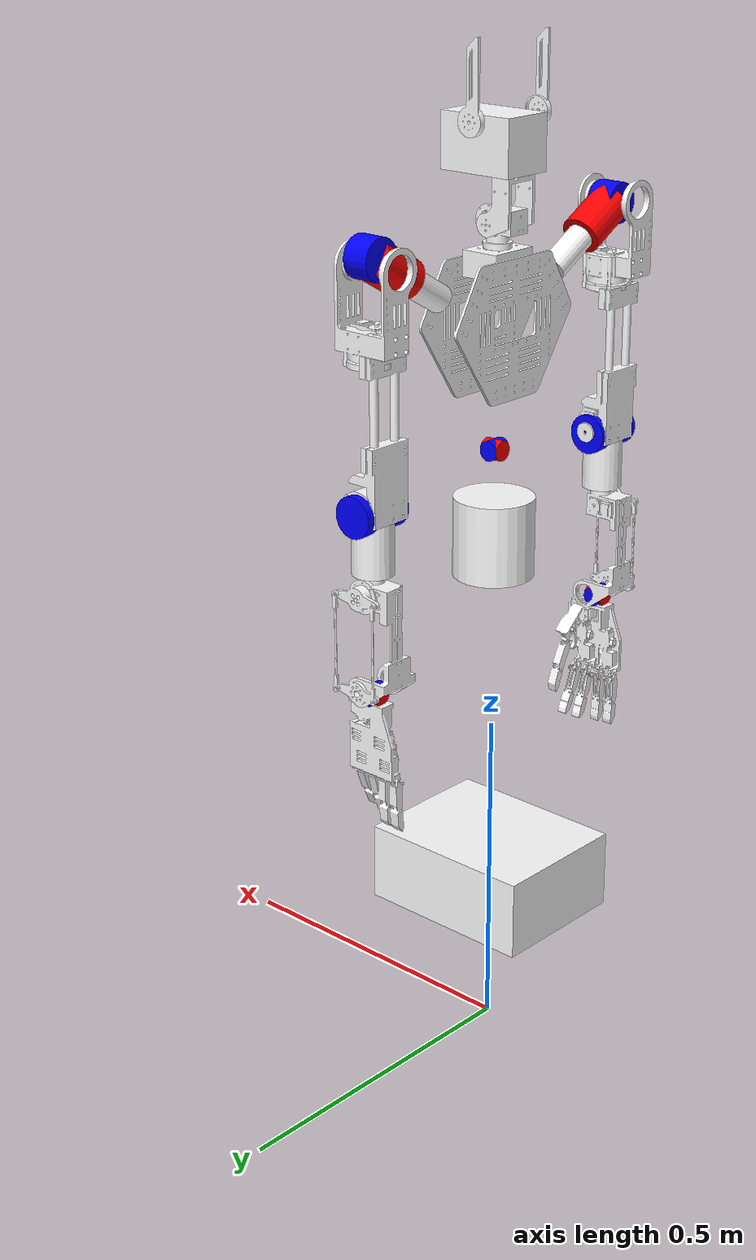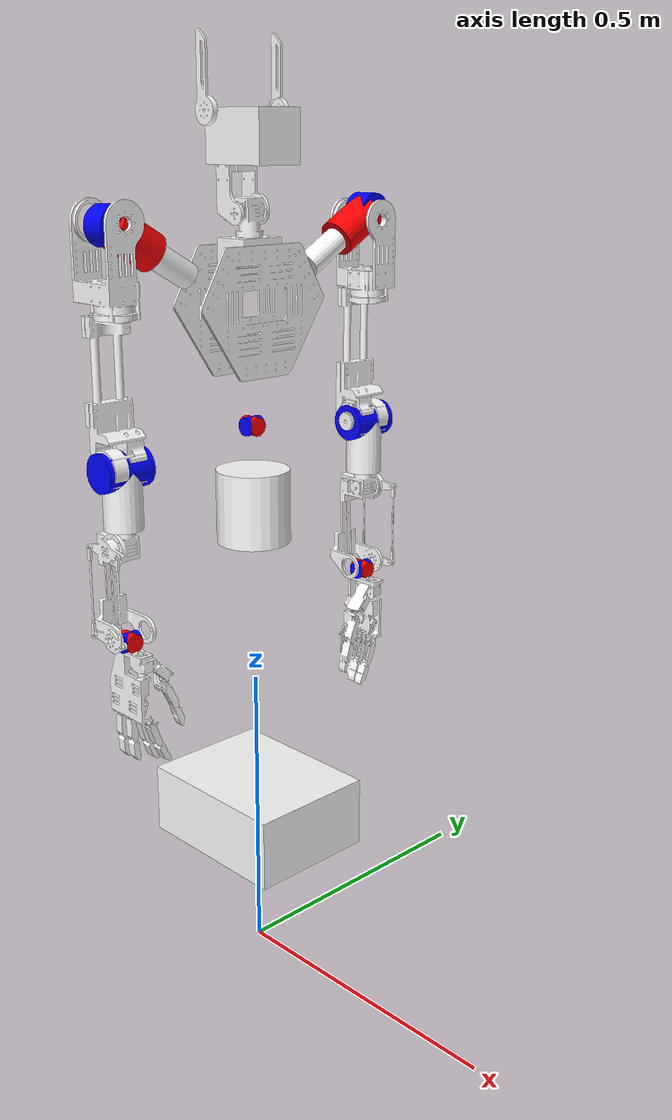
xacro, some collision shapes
<?xml version="1.0"?>

<robot name="rx1" xmlns:xacro="http://ros.org/wiki/xacro">
  <xacro:arg name="controllers_file" default="" />
  <xacro:arg name="rgbd_topic_root" default="/rx1/rgbd_camera" />

  <xacro:property name="controllers_file" value="$(arg controllers_file)" />
  <xacro:property name="rgbd_topic_root" value="$(arg rgbd_topic_root)" />

  <xacro:include filename="$(find rx1_description)/urdf/rx1_optimized.urdf.xacro" />

  <link name="world" />
  <joint name="world_base_joint" type="fixed">
    <origin xyz="0 0 0.2" rpy="0 0 0" />
    <parent link="world" />
    <child link="base_link" />
  </joint>

  <ros2_control name="GazeboSimSystem" type="system">
    <hardware>
      <plugin>gz_ros2_control/GazeboSimSystem</plugin>
    </hardware>

    <joint name="base2torso_yaw_joint">
      <command_interface name="position" />
      <state_interface name="position"><param name="initial_value">0.0</param></state_interface>
      <state_interface name="velocity"><param name="initial_value">0.0</param></state_interface>
    </joint>
    <joint name="torso_yaw2pitch_joint">
      <command_interface name="position" />
      <state_interface name="position"><param name="initial_value">0.0</param></state_interface>
      <state_interface name="velocity"><param name="initial_value">0.0</param></state_interface>
    </joint>
    <joint name="torso_pitch2roll_joint">
      <command_interface name="position" />
      <state_interface name="position"><param name="initial_value">0.0</param></state_interface>
      <state_interface name="velocity"><param name="initial_value">0.0</param></state_interface>
    </joint>

    <joint name="head_base2neck_yaw_joint">
      <command_interface name="position" />
      <state_interface name="position"><param name="initial_value">0.0</param></state_interface>
      <state_interface name="velocity"><param name="initial_value">0.0</param></state_interface>
    </joint>
    <joint name="neck_yaw2pitch_joint">
      <command_interface name="position" />
      <state_interface name="position"><param name="initial_value">0.0</param></state_interface>
      <state_interface name="velocity"><param name="initial_value">0.0</param></state_interface>
    </joint>
    <joint name="neck_pitch2head_depth_cam_mount_joint">
      <command_interface name="position" />
      <state_interface name="position"><param name="initial_value">0.0</param></state_interface>
      <state_interface name="velocity"><param name="initial_value">0.0</param></state_interface>
    </joint>
    <joint name="head_depth_cam_mount2right_ear_joint">
      <command_interface name="position" />
      <state_interface name="position"><param name="initial_value">0.0</param></state_interface>
      <state_interface name="velocity"><param name="initial_value">0.0</param></state_interface>
    </joint>
    <joint name="head_depth_cam_mount2left_ear_joint">
      <command_interface name="position" />
      <state_interface name="position"><param name="initial_value">0.0</param></state_interface>
      <state_interface name="velocity"><param name="initial_value">0.0</param></state_interface>
    </joint>

    <joint name="right_shoul_base2shoul_joint">
      <command_interface name="position" />
      <state_interface name="position"><param name="initial_value">0.0</param></state_interface>
      <state_interface name="velocity"><param name="initial_value">0.0</param></state_interface>
    </joint>
    <joint name="right_shoul2shoul_rot_joint">
      <command_interface name="position" />
      <state_interface name="position"><param name="initial_value">0.0</param></state_interface>
      <state_interface name="velocity"><param name="initial_value">0.0</param></state_interface>
    </joint>
    <joint name="right_arm2armrot_joint">
      <command_interface name="position" />
      <state_interface name="position"><param name="initial_value">0.0</param></state_interface>
      <state_interface name="velocity"><param name="initial_value">0.0</param></state_interface>
    </joint>
    <joint name="right_armrot2elbow_joint">
      <command_interface name="position" />
      <state_interface name="position"><param name="initial_value">0.0</param></state_interface>
      <state_interface name="velocity"><param name="initial_value">0.0</param></state_interface>
    </joint>
    <joint name="right_forearm2forearmrot_joint">
      <command_interface name="position" />
      <state_interface name="position"><param name="initial_value">0.0</param></state_interface>
      <state_interface name="velocity"><param name="initial_value">0.0</param></state_interface>
    </joint>
    <joint name="right_forearmrot2forearm_pitch_joint">
      <command_interface name="position" />
      <state_interface name="position"><param name="initial_value">0.0</param></state_interface>
      <state_interface name="velocity"><param name="initial_value">0.0</param></state_interface>
    </joint>
    <joint name="right_forearm_pitch2forearm_roll_joint">
      <command_interface name="position" />
      <state_interface name="position"><param name="initial_value">0.0</param></state_interface>
      <state_interface name="velocity"><param name="initial_value">0.0</param></state_interface>
    </joint>

    <joint name="left_shoul_base2shoul_joint">
      <command_interface name="position" />
      <state_interface name="position"><param name="initial_value">0.0</param></state_interface>
      <state_interface name="velocity"><param name="initial_value">0.0</param></state_interface>
    </joint>
    <joint name="left_shoul2shoul_rot_joint">
      <command_interface name="position" />
      <state_interface name="position"><param name="initial_value">0.0</param></state_interface>
      <state_interface name="velocity"><param name="initial_value">0.0</param></state_interface>
    </joint>
    <joint name="left_arm2armrot_joint">
      <command_interface name="position" />
      <state_interface name="position"><param name="initial_value">0.0</param></state_interface>
      <state_interface name="velocity"><param name="initial_value">0.0</param></state_interface>
    </joint>
    <joint name="left_armrot2elbow_joint">
      <command_interface name="position" />
      <state_interface name="position"><param name="initial_value">0.0</param></state_interface>
      <state_interface name="velocity"><param name="initial_value">0.0</param></state_interface>
    </joint>
    <joint name="left_forearm2forearmrot_joint">
      <command_interface name="position" />
      <state_interface name="position"><param name="initial_value">0.0</param></state_interface>
      <state_interface name="velocity"><param name="initial_value">0.0</param></state_interface>
    </joint>
    <joint name="left_forearmrot2forearm_pitch_joint">
      <command_interface name="position" />
      <state_interface name="position"><param name="initial_value">0.0</param></state_interface>
      <state_interface name="velocity"><param name="initial_value">0.0</param></state_interface>
    </joint>
    <joint name="left_forearm_pitch2forearm_roll_joint">
      <command_interface name="position" />
      <state_interface name="position"><param name="initial_value">0.0</param></state_interface>
      <state_interface name="velocity"><param name="initial_value">0.0</param></state_interface>
    </joint>
  </ros2_control>

  <gazebo>
    <plugin filename="libgz_ros2_control-system.so" name="gz_ros2_control::GazeboSimROS2ControlPlugin">
      <parameters>${controllers_file}</parameters>
      <hold_joints>true</hold_joints>
      <position_proportional_gain>0.5</position_proportional_gain>
    </plugin>
  </gazebo>

  <gazebo reference="camera_link">
    <sensor name="head_rgbd_camera" type="rgbd_camera">
      <always_on>true</always_on>
      <update_rate>15</update_rate>
      <visualize>true</visualize>
      <topic>${rgbd_topic_root}</topic>
      <camera>
        <horizontal_fov>1.0471975512</horizontal_fov>
        <image>
          <width>640</width>
          <height>480</height>
          <format>R8G8B8</format>
        </image>
        <clip>
          <near>0.1</near>
          <far>5.0</far>
        </clip>
      </camera>
    </sensor>
  </gazebo>
</robot>

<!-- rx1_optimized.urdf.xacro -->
<!--Note that the inertia values are placeholder and need to be updated for proper physics simulation-->

<robot name="rx1" xmlns:xacro="http://ros.org/wiki/xacro">
    <xacro:property name="rx1_pi" value="3.1415" />
    <xacro:property name="motor_torque" value="50.0"/>
    <xacro:property name="motor_vec" value="15"/>

    <material name="red">
        <color rgba="1 0 0 1"/>
    </material>

    <material name="white">
        <color rgba="1 1 1 1"/>
    </material>

    <material name="blue">
        <color rgba="0 0 1 1"/>
    </material>

    <xacro:macro name="default_inertial" params="mass">
        <inertial>
            <mass value="${mass}" />
            <inertia ixx="1.0" ixy="0.0" ixz="0.0" iyy="1.0" iyz="0.0" izz="1.0" />
        </inertial>
    </xacro:macro>

    <link name="base_link">
        <inertial>
            <mass value="5.0" />
            <!-- Keep the root inertia physically valid for Gazebo Harmonic. -->
            <inertia ixx="0.18" ixy="0.0" ixz="0.0" iyy="0.16" iyz="0.0" izz="0.2" />
        </inertial>

        <visual>
            <geometry>
                <mesh filename="package://rx1_description/meshes/base_link.stl"/>
            </geometry>
            <material name="white"/>
        </visual>
        <collision>
            <geometry>
                <box size="0.28 0.22 0.12" />
            </geometry>
            <origin rpy="0 0 0" xyz="0 0 0.06"/>
        </collision>
        <collision>
            <geometry>
                <cylinder length="0.46" radius="0.045" />
            </geometry>
            <origin rpy="0 0 0" xyz="0 0 0.35"/>
        </collision>
    </link>

    <!--                            TORSO START                         -->
    <link name="torso_yaw_link">
        <inertial>
            <mass value="5.0" />
            <inertia ixx="1.0" ixy="0.0" ixz="0.0" iyy="1.0" iyz="0.0" izz="1.0" />
        </inertial>
        <visual>
            <geometry>
                <mesh filename="package://rx1_description/meshes/torso_yaw_link.stl"/>
            </geometry>
            <origin rpy="0 0 0" xyz="0 0 0"/>
            <material name="white"/>
        </visual>
        <collision>
            <geometry>
                <cylinder length="0.12" radius="0.06" />
            </geometry>
            <origin rpy="0 0 0" xyz="0 0 0.02"/>
        </collision>
    </link>
    <joint name="base2torso_yaw_joint" type="revolute">
        <axis xyz="0 0 1" />
        <limit effort="${motor_torque}" lower="${-0.5*rx1_pi}" upper="${0.5*rx1_pi}" velocity="${motor_vec}"/>
        <dynamics damping="0.5" friction="5.0" />
        <origin xyz="0 0 0.5825" rpy="0 0 0" />
        <parent link="base_link" />
        <child link="torso_yaw_link" />
    </joint>

    <link name="torso_pitch_link">
        <inertial>
            <mass value="0.5" />
            <inertia ixx="1.0" ixy="0.0" ixz="0.0" iyy="1.0" iyz="0.0" izz="1.0" />
        </inertial>
        <visual>
            <geometry>
                <cylinder length="0.03" radius="0.015" />
            </geometry>
            <origin rpy="${0.5*rx1_pi} 0 0" xyz="0 0 0"/>
            <material name="blue"/>
        </visual>
        <collision>
            <geometry>
                <cylinder length="0.03" radius="0.01" />
            </geometry>
            <origin rpy="${0.5*rx1_pi} 0 0" xyz="0 0 0"/>
        </collision>
    </link>
    <joint name="torso_yaw2pitch_joint" type="revolute">
        <axis xyz="0 1 0" />
        <limit effort="${motor_torque}" lower="${-0.25*rx1_pi}" upper="${0.25*rx1_pi}" velocity="${motor_vec}"/>
        <dynamics damping="0.5" friction="0.1" />
        <origin xyz="0 0 0.15" rpy="0 0 0" />
        <parent link="torso_yaw_link" />
        <child link="torso_pitch_link" />
    </joint>

    <link name="torso_roll_link">
        <inertial>
            <mass value="0.5" />
            <inertia ixx="1.0" ixy="0.0" ixz="0.0" iyy="1.0" iyz="0.0" izz="1.0" />
        </inertial>
        <visual>
            <geometry>
                <cylinder length="0.03" radius="0.015" />
            </geometry>
            <origin rpy="0 ${0.5*rx1_pi} 0" xyz="0 0 0"/>
            <material name="red"/>
        </visual>
        <collision>
            <geometry>
                <cylinder length="0.03" radius="0.01" />
            </geometry>
            <origin rpy="0 ${0.5*rx1_pi} 0" xyz="0 0 0"/>
        </collision>
    </link>
    <joint name="torso_pitch2roll_joint" type="revolute">
        <axis xyz="1 0 0" />
        <limit effort="${motor_torque}" lower="${-0.25*rx1_pi}" upper="${0.25*rx1_pi}" velocity="${motor_vec}"/>
        <dynamics damping="0.5" friction="0.1" />
        <origin xyz="0 0 0" rpy="0 0 0" />
        <parent link="torso_pitch_link" />
        <child link="torso_roll_link" />
    </joint>

    <link name="torso_link">
        <inertial>
            <mass value="1" />
            <inertia ixx="4.16666667e-06" ixy="0.0" ixz="0.0" iyy="6.6666666667e-6" iyz="0.0" izz="04.16666667e-06" />
        </inertial>
        <visual>
            <geometry>
                <!--box size="0.03 0.12 0.02" /-->
                <mesh filename="package://rx1_description/meshes/torso_link.stl"/>
            </geometry>
            <origin rpy="0 0 0" xyz="0 0 0"/>
            <material name="white"/>
        </visual>
        <collision>
            <geometry>
                <box size="0.16 0.12 0.16" />
            </geometry>
            <origin rpy="0 0 0" xyz="0 0 0.02"/>
        </collision>
    </link>
    <joint name="torso_roll2torso_joint" type="fixed">
        <origin xyz="0 0 0.08" rpy="0 0 0" />
        <parent link="torso_roll_link" />
        <child link="torso_link" />
    </joint>
    <!--                            TORSO END                         -->

    <!--                            HEAD START                        -->
    <link name="head_base_link">
        <inertial>
            <mass value="0.05" />
            <inertia ixx="4.16666667e-06" ixy="0.0" ixz="0.0" iyy="6.6666666667e-6" iyz="0.0" izz="04.16666667e-06" />
        </inertial>
        <visual>
            <geometry>
                <mesh filename="package://rx1_description/meshes/head/head_base_link.stl"/>
            </geometry>
            <origin rpy="0 0 0" xyz="0 0 0"/>
            <material name="white"/>
        </visual>
        <collision>
            <geometry>
                <box size="0.12 0.10 0.08" />
            </geometry>
            <origin rpy="0 0 0" xyz="0 0 0"/>
        </collision>
    </link>
    <joint name="torso2head_base_joint" type="fixed">
        <origin xyz="0 0 0.21" rpy="0 0 0" />
        <parent link="torso_link" />
        <child link="head_base_link" />
    </joint>

    <link name="neck_yaw_link">
        <inertial>
            <mass value="0.05" />
            <inertia ixx="4.16666667e-06" ixy="0.0" ixz="0.0" iyy="6.6666666667e-6" iyz="0.0" izz="04.16666667e-06" />
        </inertial>
        <visual>
            <geometry>
                <mesh filename="package://rx1_description/meshes/head/neck_yaw_link.stl"/>
            </geometry>
            <origin rpy="0 0 0" xyz="0 0 0"/>
            <material name="white"/>
        </visual>
        <collision>
            <geometry>
                <cylinder length="0.05" radius="0.04" />
            </geometry>
            <origin rpy="0 0 0" xyz="0 0 0.01"/>
        </collision>
    </link>
    <joint name="head_base2neck_yaw_joint" type="revolute">
        <axis xyz="0 0 1" />
        <limit effort="${motor_torque}" lower="${-0.5*rx1_pi}" upper="${0.5*rx1_pi}" velocity="${motor_vec}"/>
        <dynamics damping="0.5" friction="0.1" />
        <origin xyz="0 0 0" rpy="0 0 0" />
        <parent link="head_base_link" />
        <child link="neck_yaw_link" />
    </joint>

    <link name="neck_pitch_link">
        <inertial>
            <mass value="0.05" />
            <inertia ixx="4.16666667e-06" ixy="0.0" ixz="0.0" iyy="6.6666666667e-6" iyz="0.0" izz="04.16666667e-06" />
        </inertial>
        <visual>
            <geometry>
                <mesh filename="package://rx1_description/meshes/head/neck_pitch_link.stl"/>
            </geometry>
            <origin rpy="0 0 0" xyz="0 0 0"/>
            <material name="white"/>
        </visual>
        <collision>
            <geometry>
                <box size="0.09 0.06 0.06" />
            </geometry>
            <origin rpy="0 0 0" xyz="0 0 0.01"/>
        </collision>
    </link>
    <joint name="neck_yaw2pitch_joint" type="revolute">
        <axis xyz="0 1 0" />
        <limit effort="${motor_torque}" lower="${-0.5*rx1_pi}" upper="${0.5*rx1_pi}" velocity="${motor_vec}"/>
        <dynamics damping="0.5" friction="0.1" />
        <origin xyz="0 0 0.035" rpy="0 0 0" />
        <parent link="neck_yaw_link" />
        <child link="neck_pitch_link" />
    </joint>

    <link name="head_depth_cam_mount_link">
        <inertial>
            <mass value="0.05" />
            <inertia ixx="4.16666667e-06" ixy="0.0" ixz="0.0" iyy="6.6666666667e-6" iyz="0.0" izz="04.16666667e-06" />
        </inertial>
        <visual>
            <geometry>
                <mesh filename="package://rx1_description/meshes/head/head_depth_cam_mount_link.stl"/>
            </geometry>
            <origin rpy="0 0 0" xyz="0 0 0"/>
            <material name="white"/>
        </visual>
        <collision>
            <geometry>
                <box size="0.12 0.08 0.08" />
            </geometry>
            <origin rpy="0 0 0" xyz="0.02 0 0.01"/>
        </collision>
    </link>
    <joint name="neck_pitch2head_depth_cam_mount_joint" type="revolute">
        <axis xyz="1 0 0" />
        <limit effort="${motor_torque}" lower="${-0.5*rx1_pi}" upper="${0.5*rx1_pi}" velocity="${motor_vec}"/>
        <dynamics damping="0.1" friction="0.0" />
        <origin xyz="-0.01 0 0.1" rpy="0 0 0" />
        <parent link="neck_pitch_link" />
        <child link="head_depth_cam_mount_link" />
    </joint>

    <link name="camera_link">
        <inertial>
            <mass value="0.05" />
            <inertia ixx="4.16666667e-06" ixy="0.0" ixz="0.0" iyy="6.6666666667e-6" iyz="0.0" izz="04.16666667e-06" />
        </inertial>
        <visual>
            <geometry>
                <box size="0.01 0.01 0.01" />
            </geometry>
            <origin rpy="0 0 0" xyz="0 0 0"/>
            <material name="white"/>
        </visual>
        <collision>
            <geometry>
                <box size="0.01 0.01 0.01" />
            </geometry>
            <origin rpy="0 0 0" xyz="0 0 0"/>
        </collision>
    </link>
    <joint name="head_depth_cam_mount2camera_joint" type="fixed">
        <origin xyz="0.05 0 0.03" rpy="0 0 0" />
        <parent link="head_depth_cam_mount_link" />
        <child link="camera_link" />
    </joint>

    <link name="right_ear_link">
        <inertial>
            <mass value="0.05" />
            <inertia ixx="4.16666667e-06" ixy="0.0" ixz="0.0" iyy="6.6666666667e-6" iyz="0.0" izz="04.16666667e-06" />
        </inertial>
        <visual>
            <geometry>
                <mesh filename="package://rx1_description/meshes/head/right_ear_link.stl"/>
            </geometry>
            <origin rpy="0 0 0" xyz="0 0 0"/>
            <material name="white"/>
        </visual>
        <collision>
            <geometry>
                <box size="0.02 0.04 0.05" />
            </geometry>
            <origin rpy="0 0 0" xyz="0 -0.005 0"/>
        </collision>
    </link>
    <joint name="head_depth_cam_mount2right_ear_joint" type="revolute">
        <axis xyz="0 1 0" />
        <limit effort="${motor_torque}" lower="${-0.5*rx1_pi}" upper="${0.5*rx1_pi}" velocity="${motor_vec}"/>
        <dynamics damping="0.1" friction="0.0" />
        <origin xyz="0 -0.065 0.045" rpy="0 0 0" />
        <parent link="head_depth_cam_mount_link" />
        <child link="right_ear_link" />
    </joint>

    <link name="left_ear_link">
        <inertial>
            <mass value="0.05" />
            <inertia ixx="4.16666667e-06" ixy="0.0" ixz="0.0" iyy="6.6666666667e-6" iyz="0.0" izz="04.16666667e-06" />
        </inertial>
        <visual>
            <geometry>
                <mesh filename="package://rx1_description/meshes/head/left_ear_link.stl"/>
            </geometry>
            <origin rpy="0 0 0" xyz="0 0 0"/>
            <material name="white"/>
        </visual>
        <collision>
            <geometry>
                <box size="0.02 0.04 0.05" />
            </geometry>
            <origin rpy="0 0 0" xyz="0 0.005 0"/>
        </collision>
    </link>
    <joint name="head_depth_cam_mount2left_ear_joint" type="revolute">
        <axis xyz="0 1 0" />
        <limit effort="${motor_torque}" lower="${-0.5*rx1_pi}" upper="${0.5*rx1_pi}" velocity="${motor_vec}"/>
        <dynamics damping="0.1" friction="0.0" />
        <origin xyz="0 0.065 0.045" rpy="0 0 0" />
        <parent link="head_depth_cam_mount_link" />
        <child link="left_ear_link" />
    </joint>

    <!--                            HEAD END                           -->

    <!--                            ARM START                          -->
    <xacro:macro name="arm" params="prefix side">
        <link name="${prefix}_shoul_base_link">
            <inertial>
                <mass value="0.2" />
                <inertia ixx="4.16666667e-06" ixy="0.0" ixz="0.0" iyy="6.6666666667e-6" iyz="0.0" izz="04.16666667e-06" />
            </inertial>

            <visual>
                <geometry>
                    <cylinder length="0.075" radius="0.02" />
                </geometry>
                <origin rpy="0 0 0" xyz="0 0 0.0375"/>
                <material name="white"/>
            </visual>
            <collision>
                <geometry>
                    <cylinder length="0.075" radius="0.02" />
                </geometry>
                <origin rpy="0 0 0" xyz="0 0 0.0375"/>
            </collision>
        </link>
        <joint name="head_base2${prefix}_shoul_base_joint" type="fixed">
            <origin xyz="0 ${-0.12*side} -0.05" rpy="${0.3333*rx1_pi*side} 0 0" />
            <parent link="head_base_link" />
            <child link="${prefix}_shoul_base_link" />
        </joint>

        <link name="${prefix}_shoul_link">
            <inertial>
                <mass value="0.2" />
                <inertia ixx="1.0" ixy="0.0" ixz="0.0" iyy="1.0" iyz="0.0" izz="1.0" />
            </inertial>
            <visual>
                <geometry>
                    <cylinder length="0.08" radius="0.03" />
                </geometry>
                <origin rpy="0 0 0" xyz="0 0 0.04"/>
                <material name="red"/>
            </visual>
            <collision>
                <geometry>
                    <cylinder length="0.08" radius="0.03" />
                </geometry>
                <origin rpy="0 0 0" xyz="0 0 0.04"/>
            </collision>
        </link>
        <joint name="${prefix}_shoul_base2shoul_joint" type="revolute">
            <axis xyz="0 0 1" />
                <limit effort="${motor_torque}" lower="${-0.8*rx1_pi}" upper="${0.8*rx1_pi}" velocity="${motor_vec}"/>
            <dynamics damping="0.5" friction="0.1" />
            <origin xyz="0 0 0.075" rpy="0 0 0" />
            <parent link="${prefix}_shoul_base_link" />
            <child link="${prefix}_shoul_link" />
        </joint>

        <link name="${prefix}_shoul_rot_link">
            <inertial>
                <mass value="0.2" />
                <inertia ixx="1.0" ixy="0.0" ixz="0.0" iyy="1.0" iyz="0.0" izz="1.0" />
            </inertial>
            <visual>
                <geometry>
                    <cylinder length="0.04" radius="0.03" />
                </geometry>
                <origin rpy="0 ${0.5*rx1_pi} 0" xyz="0 0 0"/>
                <material name="blue"/>
            </visual>
            <collision>
                <geometry>
                    <cylinder length="0.04" radius="0.03" />
                </geometry>
                <origin rpy="0 ${0.5*rx1_pi} 0" xyz="0 0 0"/>
            </collision>
        </link>
        <joint name="${prefix}_shoul2shoul_rot_joint" type="revolute">
            <axis xyz="1 0 0" />
            <xacro:if value="${prefix == 'right'}">
                <limit effort="${motor_torque}" lower="${-0.5*rx1_pi}" upper="${0.16*rx1_pi}" velocity="${motor_vec}"/>
                <dynamics damping="0.5" friction="0.1" />
            </xacro:if>
            <xacro:if value="${prefix == 'left'}">
                <limit effort="${motor_torque}" lower="${-0.16*rx1_pi}" upper="${0.5*rx1_pi}" velocity="${motor_vec}"/>
                <dynamics damping="0.5" friction="0.1" />
            </xacro:if>
            <origin xyz="0 0 0.08" rpy="${-0.3333*rx1_pi*side} 0 0" />
            <parent link="${prefix}_shoul_link" />
            <child link="${prefix}_shoul_rot_link" />
        </joint>

        <link name="${prefix}_upper_arm_link">
           <inertial>
                <mass value="0.1" />
                <inertia ixx="1.0" ixy="0.0" ixz="0.0" iyy="1.0" iyz="0.0" izz="1.0" />
           </inertial>
           <visual>
                <geometry>
                    <!--cylinder length="0.085" radius="0.015" /-->
                    <mesh filename="package://rx1_description/meshes/${prefix}_arm/${prefix}_upper_arm_link.stl"/>
                </geometry>
                <origin rpy="0 0 0" xyz="0 0 0"/>
                <material name="white"/>
            </visual>
            <collision>
                <geometry>
                    <box size="0.08 0.08 0.14" />
                </geometry>
                <origin rpy="0 0 0" xyz="0 0 -0.03"/>
            </collision>
        </link>
        <joint name="${prefix}_shoul_rot2upper_arm_joint" type="fixed">
            <origin xyz="0 0 -0.0625" rpy="0 0 0" />
            <parent link="${prefix}_shoul_rot_link" />
            <child link="${prefix}_upper_arm_link" />
        </joint>

        <link name="${prefix}_armrot_link">
            <inertial>
                <mass value="0.1" />
                <inertia ixx="1.0" ixy="0.0" ixz="0.0" iyy="1.0" iyz="0.0" izz="1.0" />
            </inertial>
            <visual>
                <geometry>
                    <!--cylinder length="0.22" radius="0.03" /-->
                    <mesh filename="package://rx1_description/meshes/${prefix}_arm/${prefix}_elbow_link.stl"/>
                </geometry>
                <origin rpy="0 0 0" xyz="0 0 -0.11"/>
                <material name="white"/>
            </visual>
            <collision>
                <geometry>
                    <cylinder length="0.22" radius="0.03" />
                </geometry>
                <origin rpy="0 0 0" xyz="0 0 -0.11"/>
            </collision>
        </link>
        <joint name="${prefix}_arm2armrot_joint" type="revolute">
            <axis xyz="0 0 1" />
            <limit effort="${motor_torque}" lower="${-0.5*rx1_pi}" upper="${0.5*rx1_pi}" velocity="${motor_vec}"/>
            <dynamics damping="0.1" friction="0.1" />
            <origin xyz="0 0 -0.0625" rpy="0 0 0" />
            <parent link="${prefix}_upper_arm_link" />
            <child link="${prefix}_armrot_link" />
        </joint>

        <link name="${prefix}_elbow_link">
            <inertial>
                <mass value="0.1" />
                <inertia ixx="1.0" ixy="0.0" ixz="0.0" iyy="1.0" iyz="0.0" izz="1.0" />
            </inertial>
            <visual>
                <geometry>
                    <cylinder length="0.08" radius="0.03" />
                </geometry>
                <origin rpy="0 ${0.5*rx1_pi*side} -${0.5*rx1_pi}" xyz="0 0 0"/>
                <material name="blue"/>
            </visual>
            <collision>
                <geometry>
                    <cylinder length="0.08" radius="0.03" />
                </geometry>
                <origin rpy="0 ${0.5*rx1_pi*side} -${0.5*rx1_pi}" xyz="0 0 0"/>
            </collision>
        </link>
        <joint name="${prefix}_armrot2elbow_joint" type="revolute">
            <axis xyz="0 1 0" />
            <limit effort="${motor_torque}" lower="${-0.7*rx1_pi}" upper="0" velocity="${motor_vec}"/>
            <dynamics damping="0.1" friction="0.1" />
            <origin xyz="0 0 -0.22" rpy="0 0 0" />
            <parent link="${prefix}_armrot_link" />
            <child link="${prefix}_elbow_link" />
        </joint>

        <link name="${prefix}_forearm_link">
            <inertial>
                <mass value="0.1" />
                <inertia ixx="1.0" ixy="0.0" ixz="0.0" iyy="1.0" iyz="0.0" izz="1.0" />
            </inertial>
            <visual>
                <geometry>
                    <cylinder length="0.09" radius="0.03" />
                </geometry>
                <origin rpy="0 0 0" xyz="0 0 0"/>
                <material name="white"/>
            </visual>
            <collision>
                <geometry>
                    <cylinder length="0.09" radius="0.03" />
                </geometry>
                <origin rpy="0 0 0" xyz="0 0 0"/>
            </collision>
        </link>
        <joint name="${prefix}_elbow2forearm_joint" type="fixed">
            <origin xyz="0 0 -0.045" rpy="0 0 0" />
            <parent link="${prefix}_elbow_link" />
            <child link="${prefix}_forearm_link" />
        </joint>

        <link name="${prefix}_forearmrot_link">
            <inertial>
                <mass value="0.1" />
                <inertia ixx="1.0" ixy="0.0" ixz="0.0" iyy="1.0" iyz="0.0" izz="1.0" />
            </inertial>
            <visual>
                <geometry>
                    <!--cylinder length="0.18" radius="0.015" /-->
                    <mesh filename="package://rx1_description/meshes/${prefix}_arm/${prefix}_forearm_link.stl"/>
                </geometry>
                <origin rpy="0 0 0" xyz="0 0 -0.09"/>
                <material name="white"/>
            </visual>
            <collision>
                <geometry>
                    <cylinder length="0.18" radius="0.015" />
                </geometry>
                <origin rpy="0 0 0" xyz="0 0 -0.09"/>
            </collision>
        </link>
        <joint name="${prefix}_forearm2forearmrot_joint" type="revolute">
            <axis xyz="0 0 1" />
            <limit effort="${motor_torque}" lower="${-0.5*rx1_pi}" upper="${0.5*rx1_pi}" velocity="${motor_vec}"/>
            <dynamics damping="0.1" friction="0.1" />
            <origin xyz="0 0 -0.045" rpy="0 0 0" />
            <parent link="${prefix}_forearm_link" />
            <child link="${prefix}_forearmrot_link" />
        </joint>

        <link name="${prefix}_forearm_pitch_link">
            <inertial>
                <mass value="0.1" />
                <inertia ixx="1.0" ixy="0.0" ixz="0.0" iyy="1.0" iyz="0.0" izz="1.0" />
            </inertial>
            <visual>
                <geometry>
                    <cylinder length="0.03" radius="0.015" />
                </geometry>
            <origin rpy="${0.5*rx1_pi*side} 0 0" xyz="0 0 0"/>
                <material name="blue"/>
            </visual>
            <collision>
                <geometry>
                    <cylinder length="0.03" radius="0.01" />
                </geometry>
                <origin rpy="${0.5*rx1_pi*side} 0 0" xyz="0 0 0"/>
            </collision>
        </link>
        <joint name="${prefix}_forearmrot2forearm_pitch_joint" type="revolute">
            <axis xyz="0 1 0" />
            <limit effort="${motor_torque}" lower="${-0.25*rx1_pi}" upper="${0.25*rx1_pi}" velocity="${motor_vec}"/>
            <dynamics damping="0.1" friction="0.1" />
            <origin xyz="0 0 -0.18" rpy="0 0 0" />
            <parent link="${prefix}_forearmrot_link" />
            <child link="${prefix}_forearm_pitch_link" />
        </joint>

        <link name="${prefix}_forearm_roll_link">
            <inertial>
                <mass value="0.1" />
                <inertia ixx="1.0" ixy="0.0" ixz="0.0" iyy="1.0" iyz="0.0" izz="1.0" />
            </inertial>
            <visual>
                <geometry>
                    <cylinder length="0.03" radius="0.015" />
                </geometry>
            <origin rpy="0 ${0.5*rx1_pi*side} 0" xyz="0 0 0"/>
                <material name="red"/>
            </visual>
            <collision>
                <geometry>
                    <cylinder length="0.03" radius="0.01" />
                </geometry>
                <origin rpy="0 ${0.5*rx1_pi*side} 0" xyz="0 0 0"/>
            </collision>
        </link>
        <joint name="${prefix}_forearm_pitch2forearm_roll_joint" type="revolute">
            <axis xyz="1 0 0" />
            <limit effort="${motor_torque}" lower="${-0.25*rx1_pi}" upper="${0.25*rx1_pi}" velocity="${motor_vec}"/>
            <dynamics damping="0.1" friction="0.1" />
            <origin xyz="0 0 0" rpy="0 0 0" />
            <parent link="${prefix}_forearm_pitch_link" />
            <child link="${prefix}_forearm_roll_link" />
        </joint>

        <link name="${prefix}_hand_link">
            <inertial>
                <mass value="0.1" />
                <inertia ixx="1.0" ixy="0.0" ixz="0.0" iyy="1.0" iyz="0.0" izz="1.0" />
            </inertial>
            <visual>
                <geometry>
                    <!--box size="0.04 0.02 0.12" /-->
                    <mesh filename="package://rx1_description/meshes/${prefix}_arm/${prefix}_hand_link.stl"/>
                </geometry>
                <origin rpy="0 0 0" xyz="0 0 0"/>
                <material name="white"/>
            </visual>
            <collision>
                <geometry>
                    <box size="0.04 0.02 0.12" />
                </geometry>
                <origin rpy="0 0 0" xyz="0 0 0"/>
            </collision>
        </link>
        <joint name="${prefix}_forearm_roll2hand_joint" type="fixed">
            <origin xyz="0 0 -0.1" rpy="0 0 0" />
            <parent link="${prefix}_forearm_roll_link" />
            <child link="${prefix}_hand_link" />
        </joint>

    </xacro:macro>

    <xacro:arm prefix="right" side="1" />
    <xacro:arm prefix="left" side="-1" />

    <!--                            ARM END                             -->

</robot>
